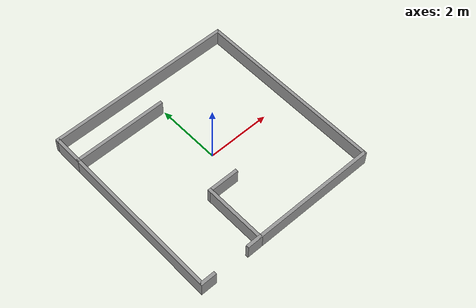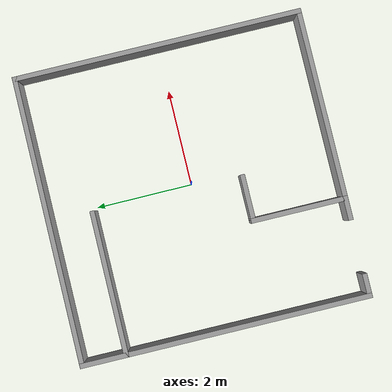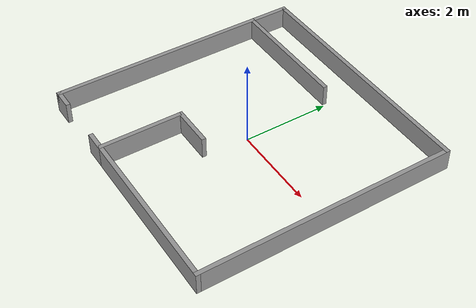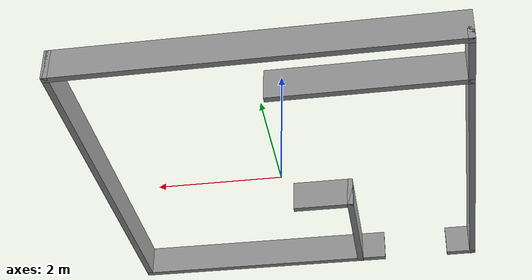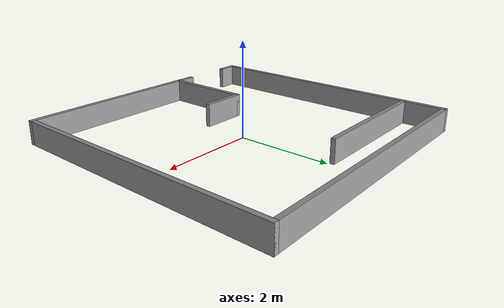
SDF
<?xml version='1.0'?>
<sdf version='1.6'>
  <model name='shape5'>
    <pose frame=''>-0.053 0.018 0 0 -0 0</pose>
    <link name='Wall_10'>
      <collision name='Wall_10_Collision'>
        <geometry>
          <box>
            <size>6 0.1 0.5</size>
          </box>
        </geometry>
        <pose frame=''>0 0 0.25 0 -0 0</pose>
      </collision>
      <visual name='Wall_10_Visual'>
        <pose frame=''>0 0 0.25 0 -0 0</pose>
        <geometry>
          <box>
            <size>6 0.1 0.5</size>
          </box>
        </geometry>
        <material>
          <script>
            <uri>file://media/materials/scripts/gazebo.material</uri>
            <name>Gazebo/Grey</name>
          </script>
          <ambient>1 1 1 1</ambient>
        </material>
        <meta>
          <layer>0</layer>
        </meta>
      </visual>
      <pose frame=''>-0 2.95 0 0 -0 0</pose>
    </link>
    <link name='Wall_11'>
      <collision name='Wall_11_Collision'>
        <geometry>
          <box>
            <size>6 0.1 0.5</size>
          </box>
        </geometry>
        <pose frame=''>0 0 0.25 0 -0 0</pose>
      </collision>
      <visual name='Wall_11_Visual'>
        <pose frame=''>0 0 0.25 0 -0 0</pose>
        <geometry>
          <box>
            <size>6 0.1 0.5</size>
          </box>
        </geometry>
        <material>
          <script>
            <uri>file://media/materials/scripts/gazebo.material</uri>
            <name>Gazebo/Grey</name>
          </script>
          <ambient>1 1 1 1</ambient>
        </material>
        <meta>
          <layer>0</layer>
        </meta>
      </visual>
      <pose frame=''>2.95 0 0 0 -0 -1.5708</pose>
    </link>
    <link name='Wall_12'>
      <collision name='Wall_12_Collision'>
        <geometry>
          <box>
            <size>4 0.1 0.5</size>
          </box>
        </geometry>
        <pose frame=''>0 0 0.25 0 -0 0</pose>
      </collision>
      <visual name='Wall_12_Visual'>
        <pose frame=''>0 0 0.25 0 -0 0</pose>
        <geometry>
          <box>
            <size>4 0.1 0.5</size>
          </box>
        </geometry>
        <material>
          <script>
            <uri>file://media/materials/scripts/gazebo.material</uri>
            <name>Gazebo/Grey</name>
          </script>
          <ambient>1 1 1 1</ambient>
        </material>
        <meta>
          <layer>0</layer>
        </meta>
      </visual>
      <pose frame=''>1 -2.95 0 0 -0 3.14159</pose>
    </link>
    <link name='Wall_13'>
      <collision name='Wall_13_Collision'>
        <geometry>
          <box>
            <size>2 0.1 0.5</size>
          </box>
        </geometry>
        <pose frame=''>0 0 0.25 0 -0 0</pose>
      </collision>
      <visual name='Wall_13_Visual'>
        <pose frame=''>0 0 0.25 0 -0 0</pose>
        <geometry>
          <box>
            <size>2 0.1 0.5</size>
          </box>
        </geometry>
        <material>
          <script>
            <uri>file://media/materials/scripts/gazebo.material</uri>
            <name>Gazebo/Grey</name>
          </script>
          <ambient>1 1 1 1</ambient>
        </material>
        <meta>
          <layer>0</layer>
        </meta>
      </visual>
      <pose frame=''>-0.95 -2 0 0 -0 1.5708</pose>
    </link>
    <link name='Wall_14'>
      <collision name='Wall_14_Collision'>
        <geometry>
          <box>
            <size>1.00029 0.1 0.5</size>
          </box>
        </geometry>
        <pose frame=''>0 0 0.25 0 -0 0</pose>
      </collision>
      <visual name='Wall_14_Visual'>
        <pose frame=''>0 0 0.25 0 -0 0</pose>
        <geometry>
          <box>
            <size>1.00029 0.1 0.5</size>
          </box>
        </geometry>
        <material>
          <script>
            <uri>file://media/materials/scripts/gazebo.material</uri>
            <name>Gazebo/Grey</name>
          </script>
          <ambient>1 1 1 1</ambient>
        </material>
        <meta>
          <layer>0</layer>
        </meta>
      </visual>
      <pose frame=''>-0.5 -1.05 0 0 -0 0</pose>
    </link>
    <link name='Wall_18'>
      <collision name='Wall_18_Collision'>
        <geometry>
          <box>
            <size>1 0.1 0.5</size>
          </box>
        </geometry>
        <pose frame=''>0 0 0.25 0 -0 0</pose>
      </collision>
      <visual name='Wall_18_Visual'>
        <pose frame=''>0 0 0.25 0 -0 0</pose>
        <geometry>
          <box>
            <size>1 0.1 0.5</size>
          </box>
        </geometry>
        <material>
          <script>
            <uri>file://media/materials/scripts/gazebo.material</uri>
            <name>Gazebo/Grey</name>
          </script>
          <ambient>1 1 1 1</ambient>
        </material>
        <meta>
          <layer>0</layer>
        </meta>
      </visual>
      <pose frame=''>-2.95 2.5 0 0 -0 -1.5708</pose>
    </link>
    <link name='Wall_19'>
      <collision name='Wall_19_Collision'>
        <geometry>
          <box>
            <size>3 0.1 0.5</size>
          </box>
        </geometry>
        <pose frame=''>0 0 0.25 0 -0 0</pose>
      </collision>
      <visual name='Wall_19_Visual'>
        <pose frame=''>0 0 0.25 0 -0 0</pose>
        <geometry>
          <box>
            <size>3 0.1 0.5</size>
          </box>
        </geometry>
        <material>
          <script>
            <uri>file://media/materials/scripts/gazebo.material</uri>
            <name>Gazebo/Grey</name>
          </script>
          <ambient>1 1 1 1</ambient>
        </material>
        <meta>
          <layer>0</layer>
        </meta>
      </visual>
      <pose frame=''>-1.5 2.05 0 0 -0 0</pose>
    </link>
    <link name='Wall_21'>
      <collision name='Wall_21_Collision'>
        <geometry>
          <box>
            <size>5.1 0.1 0.5</size>
          </box>
        </geometry>
        <pose frame=''>0 0 0.25 0 -0 0</pose>
      </collision>
      <visual name='Wall_21_Visual'>
        <pose frame=''>0 0 0.25 0 -0 0</pose>
        <geometry>
          <box>
            <size>5.1 0.1 0.5</size>
          </box>
        </geometry>
        <material>
          <script>
            <uri>file://media/materials/scripts/gazebo.material</uri>
            <name>Gazebo/Grey</name>
          </script>
          <ambient>1 1 1 1</ambient>
        </material>
        <meta>
          <layer>0</layer>
        </meta>
      </visual>
      <pose frame=''>-2.95 -0.45 0 0 -0 -1.5708</pose>
    </link>
    <link name='Wall_22'>
      <collision name='Wall_22_Collision'>
        <geometry>
          <box>
            <size>0.5 0.1 0.5</size>
          </box>
        </geometry>
        <pose frame=''>0 0 0.25 0 -0 0</pose>
      </collision>
      <visual name='Wall_22_Visual'>
        <pose frame=''>0 0 0.25 0 -0 0</pose>
        <geometry>
          <box>
            <size>0.5 0.1 0.5</size>
          </box>
        </geometry>
        <material>
          <script>
            <uri>file://media/materials/scripts/gazebo.material</uri>
            <name>Gazebo/Grey</name>
          </script>
          <ambient>1 1 1 1</ambient>
        </material>
        <meta>
          <layer>0</layer>
        </meta>
      </visual>
      <pose frame=''>-2.75 -2.95 0 0 -0 0</pose>
    </link>
    <link name='Wall_24'>
      <collision name='Wall_24_Collision'>
        <geometry>
          <box>
            <size>0.5 0.1 0.5</size>
          </box>
        </geometry>
        <pose frame=''>0 0 0.25 0 -0 0</pose>
      </collision>
      <visual name='Wall_24_Visual'>
        <pose frame=''>0 0 0.25 0 -0 0</pose>
        <geometry>
          <box>
            <size>0.5 0.1 0.5</size>
          </box>
        </geometry>
        <material>
          <script>
            <uri>file://media/materials/scripts/gazebo.material</uri>
            <name>Gazebo/Grey</name>
          </script>
          <ambient>1 1 1 1</ambient>
        </material>
        <meta>
          <layer>0</layer>
        </meta>
      </visual>
      <pose frame=''>-1.15 -2.95 0 0 -0 3.14159</pose>
    </link>
    <static>1</static>
  </model>
</sdf>
